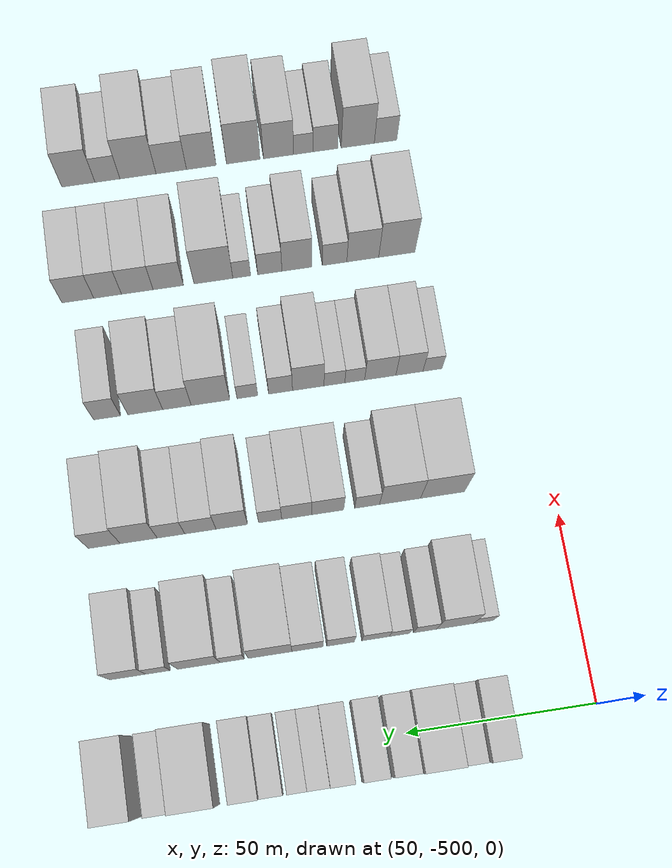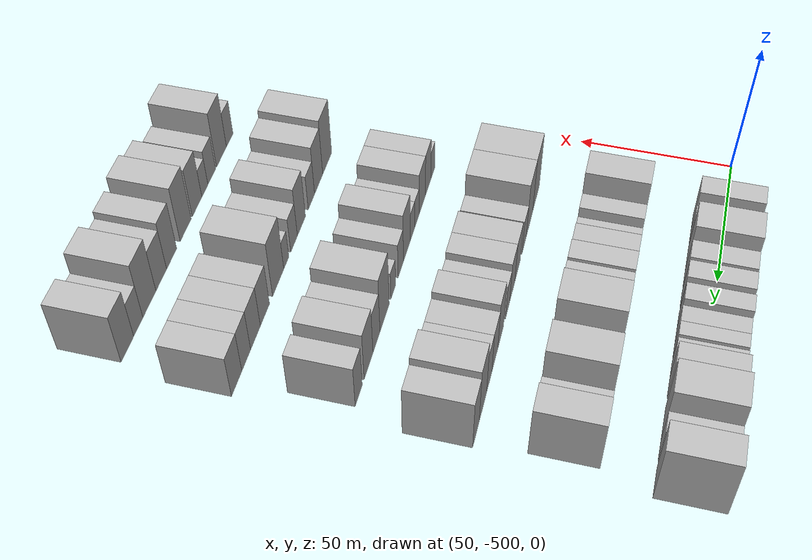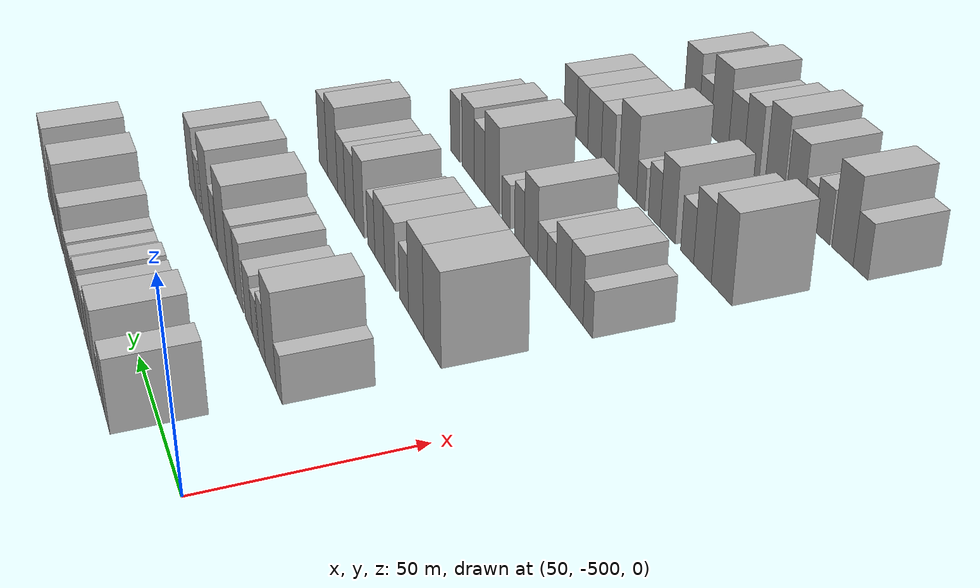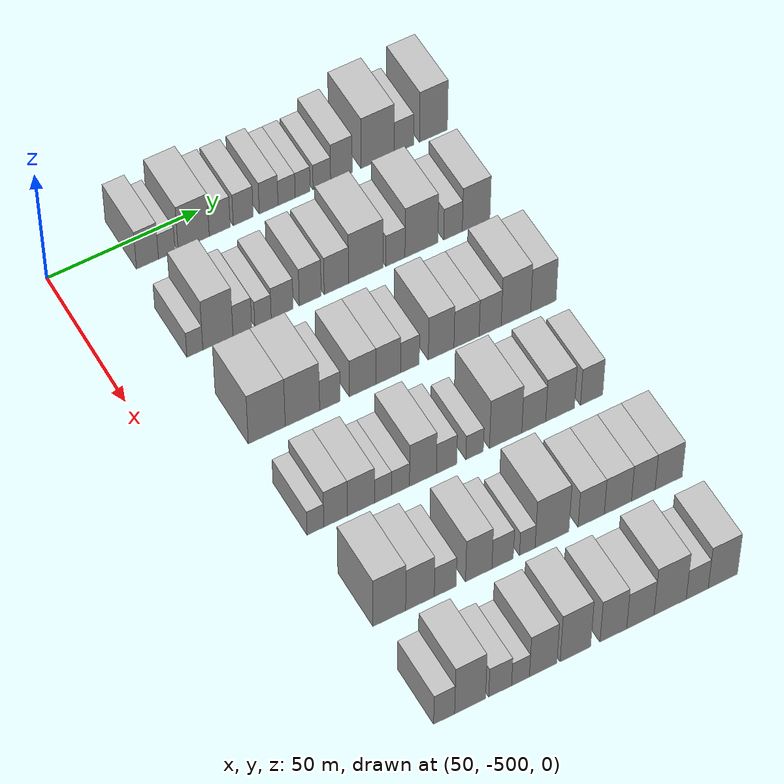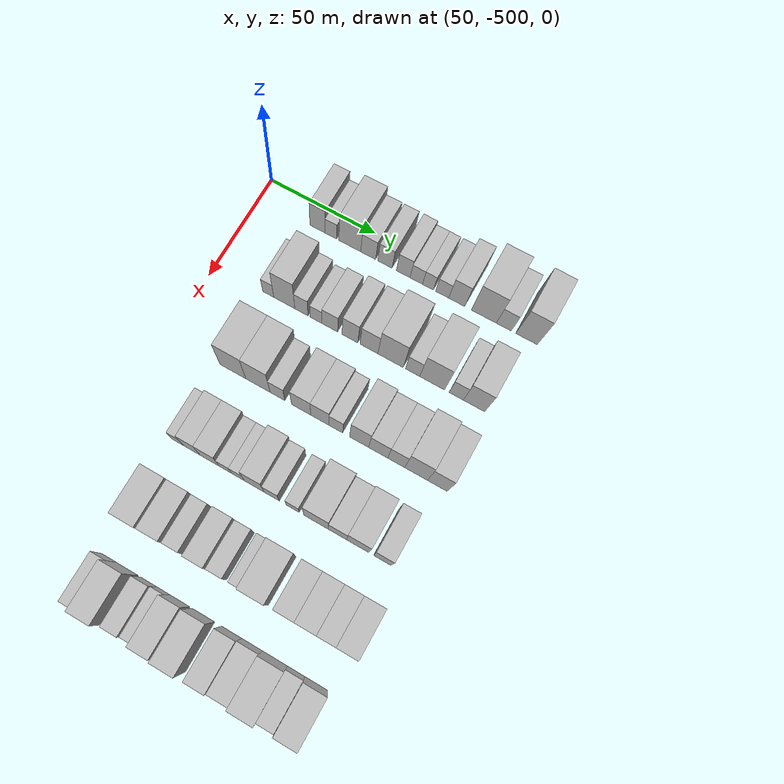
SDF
<sdf version="1.6">
 <world name="default">
  <model name="building_12">
   <static>1</static>
   <pose>50.0000 -471.9959 0 0.000000 0.000000 0.000000</pose>
   <link name="link">
    <pose>0 0 9.00 0 0 0</pose>
    <collision name="collision"><geometry><box><size>20.0000 7.2675 18.0000</size></box></geometry></collision>
    <visual name="visual">
     <cast_shadows>0</cast_shadows>
     <geometry><box><size>20.0000 7.2675 18.0000</size></box></geometry>
     <material>
      <script>
       <uri>model://HANNAS_wall/materials/scripts</uri>
       <uri>model://HANNAS_wall/materials/textures</uri>
       <name>vrc/HANNAS_wall</name>
      </script>
     </material>
    </visual>
   </link>
  </model>
  <model name="building_13">
   <static>1</static>
   <pose>50.0000 -465.6149 0 0.000000 0.000000 0.000000</pose>
   <link name="link">
    <pose>0 0 6.00 0 0 0</pose>
    <collision name="collision"><geometry><box><size>20.0000 5.4946 12.0000</size></box></geometry></collision>
    <visual name="visual">
     <cast_shadows>0</cast_shadows>
     <geometry><box><size>20.0000 5.4946 12.0000</size></box></geometry>
     <material>
      <script>
       <uri>model://HANNAS_wall/materials/scripts</uri>
       <uri>model://HANNAS_wall/materials/textures</uri>
       <name>vrc/HANNAS_wall</name>
      </script>
     </material>
    </visual>
   </link>
  </model>
  <model name="building_14">
   <static>1</static>
   <pose>50.0000 -456.6829 0 0.000000 0.000000 0.000000</pose>
   <link name="link">
    <pose>0 0 10.50 0 0 0</pose>
    <collision name="collision"><geometry><box><size>20.0000 10.3693 21.0000</size></box></geometry></collision>
    <visual name="visual">
     <cast_shadows>0</cast_shadows>
     <geometry><box><size>20.0000 10.3693 21.0000</size></box></geometry>
     <material>
      <script>
       <uri>model://HANNAS_wall/materials/scripts</uri>
       <uri>model://HANNAS_wall/materials/textures</uri>
       <name>vrc/HANNAS_wall</name>
      </script>
     </material>
    </visual>
   </link>
  </model>
  <model name="building_15">
   <static>1</static>
   <pose>50.0000 -447.9910 0 0.000000 0.000000 0.000000</pose>
   <link name="link">
    <pose>0 0 7.50 0 0 0</pose>
    <collision name="collision"><geometry><box><size>20.0000 7.0146 15.0000</size></box></geometry></collision>
    <visual name="visual">
     <cast_shadows>0</cast_shadows>
     <geometry><box><size>20.0000 7.0146 15.0000</size></box></geometry>
     <material>
      <script>
       <uri>model://HANNAS_wall/materials/scripts</uri>
       <uri>model://HANNAS_wall/materials/textures</uri>
       <name>vrc/HANNAS_wall</name>
      </script>
     </material>
    </visual>
   </link>
  </model>
  <model name="building_16">
   <static>1</static>
   <pose>50.0000 -440.1309 0 0.000000 0.000000 0.000000</pose>
   <link name="link">
    <pose>0 0 7.50 0 0 0</pose>
    <collision name="collision"><geometry><box><size>20.0000 6.7055 15.0000</size></box></geometry></collision>
    <visual name="visual">
     <cast_shadows>0</cast_shadows>
     <geometry><box><size>20.0000 6.7055 15.0000</size></box></geometry>
     <material>
      <script>
       <uri>model://HANNAS_wall/materials/scripts</uri>
       <uri>model://HANNAS_wall/materials/textures</uri>
       <name>vrc/HANNAS_wall</name>
      </script>
     </material>
    </visual>
   </link>
  </model>
  <model name="building_17">
   <static>1</static>
   <pose>50.0000 -431.6182 0 0.000000 0.000000 0.000000</pose>
   <link name="link">
    <pose>0 0 7.50 0 0 0</pose>
    <collision name="collision"><geometry><box><size>20.0000 6.3200 15.0000</size></box></geometry></collision>
    <visual name="visual">
     <cast_shadows>0</cast_shadows>
     <geometry><box><size>20.0000 6.3200 15.0000</size></box></geometry>
     <material>
      <script>
       <uri>model://HANNAS_wall/materials/scripts</uri>
       <uri>model://HANNAS_wall/materials/textures</uri>
       <name>vrc/HANNAS_wall</name>
      </script>
     </material>
    </visual>
   </link>
  </model>
  <model name="building_18">
   <static>1</static>
   <pose>50.0000 -425.5601 0 0.000000 0.000000 0.000000</pose>
   <link name="link">
    <pose>0 0 6.00 0 0 0</pose>
    <collision name="collision"><geometry><box><size>20.0000 5.7961 12.0000</size></box></geometry></collision>
    <visual name="visual">
     <cast_shadows>0</cast_shadows>
     <geometry><box><size>20.0000 5.7961 12.0000</size></box></geometry>
     <material>
      <script>
       <uri>model://HANNAS_wall/materials/scripts</uri>
       <uri>model://HANNAS_wall/materials/textures</uri>
       <name>vrc/HANNAS_wall</name>
      </script>
     </material>
    </visual>
   </link>
  </model>
  <model name="building_19">
   <static>1</static>
   <pose>50.0000 -420.1431 0 0.000000 0.000000 0.000000</pose>
   <link name="link">
    <pose>0 0 6.00 0 0 0</pose>
    <collision name="collision"><geometry><box><size>20.0000 5.0380 12.0000</size></box></geometry></collision>
    <visual name="visual">
     <cast_shadows>0</cast_shadows>
     <geometry><box><size>20.0000 5.0380 12.0000</size></box></geometry>
     <material>
      <script>
       <uri>model://HANNAS_wall/materials/scripts</uri>
       <uri>model://HANNAS_wall/materials/textures</uri>
       <name>vrc/HANNAS_wall</name>
      </script>
     </material>
    </visual>
   </link>
  </model>
  <model name="building_20">
   <static>1</static>
   <pose>50.0000 -413.6426 0 0.000000 0.000000 0.000000</pose>
   <link name="link">
    <pose>0 0 6.00 0 0 0</pose>
    <collision name="collision"><geometry><box><size>20.0000 5.9629 12.0000</size></box></geometry></collision>
    <visual name="visual">
     <cast_shadows>0</cast_shadows>
     <geometry><box><size>20.0000 5.9629 12.0000</size></box></geometry>
     <material>
      <script>
       <uri>model://HANNAS_wall/materials/scripts</uri>
       <uri>model://HANNAS_wall/materials/textures</uri>
       <name>vrc/HANNAS_wall</name>
      </script>
     </material>
    </visual>
   </link>
  </model>
  <model name="building_21">
   <static>1</static>
   <pose>50.0000 -406.9876 0 0.000000 0.000000 0.000000</pose>
   <link name="link">
    <pose>0 0 9.00 0 0 0</pose>
    <collision name="collision"><geometry><box><size>20.0000 7.3472 18.0000</size></box></geometry></collision>
    <visual name="visual">
     <cast_shadows>0</cast_shadows>
     <geometry><box><size>20.0000 7.3472 18.0000</size></box></geometry>
     <material>
      <script>
       <uri>model://HANNAS_wall/materials/scripts</uri>
       <uri>model://HANNAS_wall/materials/textures</uri>
       <name>vrc/HANNAS_wall</name>
      </script>
     </material>
    </visual>
   </link>
  </model>
  <model name="building_22">
   <static>1</static>
   <pose>50.0000 -394.6704 0 0.000000 0.000000 0.000000</pose>
   <link name="link">
    <pose>0 0 12.00 0 0 0</pose>
    <collision name="collision"><geometry><box><size>20.0000 11.2872 24.0000</size></box></geometry></collision>
    <visual name="visual">
     <cast_shadows>0</cast_shadows>
     <geometry><box><size>20.0000 11.2872 24.0000</size></box></geometry>
     <material>
      <script>
       <uri>model://HANNAS_wall/materials/scripts</uri>
       <uri>model://HANNAS_wall/materials/textures</uri>
       <name>vrc/HANNAS_wall</name>
      </script>
     </material>
    </visual>
   </link>
  </model>
  <model name="building_23">
   <static>1</static>
   <pose>50.0000 -385.6623 0 0.000000 0.000000 0.000000</pose>
   <link name="link">
    <pose>0 0 7.50 0 0 0</pose>
    <collision name="collision"><geometry><box><size>20.0000 6.7290 15.0000</size></box></geometry></collision>
    <visual name="visual">
     <cast_shadows>0</cast_shadows>
     <geometry><box><size>20.0000 6.7290 15.0000</size></box></geometry>
     <material>
      <script>
       <uri>model://HANNAS_wall/materials/scripts</uri>
       <uri>model://HANNAS_wall/materials/textures</uri>
       <name>vrc/HANNAS_wall</name>
      </script>
     </material>
    </visual>
   </link>
  </model>
  <model name="building_24">
   <static>1</static>
   <pose>50.0000 -375.4897 0 0.000000 0.000000 0.000000</pose>
   <link name="link">
    <pose>0 0 12.00 0 0 0</pose>
    <collision name="collision"><geometry><box><size>20.0000 9.6162 24.0000</size></box></geometry></collision>
    <visual name="visual">
     <cast_shadows>0</cast_shadows>
     <geometry><box><size>20.0000 9.6162 24.0000</size></box></geometry>
     <material>
      <script>
       <uri>model://HANNAS_wall/materials/scripts</uri>
       <uri>model://HANNAS_wall/materials/textures</uri>
       <name>vrc/HANNAS_wall</name>
      </script>
     </material>
    </visual>
   </link>
  </model>
  <model name="building_147">
   <static>1</static>
   <pose>85.0000 -474.8189 0 0.000000 0.000000 0.000000</pose>
   <link name="link">
    <pose>0 0 6.00 0 0 0</pose>
    <collision name="collision"><geometry><box><size>20.0000 5.2224 12.0000</size></box></geometry></collision>
    <visual name="visual">
     <cast_shadows>0</cast_shadows>
     <geometry><box><size>20.0000 5.2224 12.0000</size></box></geometry>
     <material>
      <script>
       <uri>model://HANNAS_wall/materials/scripts</uri>
       <uri>model://HANNAS_wall/materials/textures</uri>
       <name>vrc/HANNAS_wall</name>
      </script>
     </material>
    </visual>
   </link>
  </model>
  <model name="building_148">
   <static>1</static>
   <pose>85.0000 -467.2679 0 0.000000 0.000000 0.000000</pose>
   <link name="link">
    <pose>0 0 12.00 0 0 0</pose>
    <collision name="collision"><geometry><box><size>20.0000 9.8795 24.0000</size></box></geometry></collision>
    <visual name="visual">
     <cast_shadows>0</cast_shadows>
     <geometry><box><size>20.0000 9.8795 24.0000</size></box></geometry>
     <material>
      <script>
       <uri>model://HANNAS_wall/materials/scripts</uri>
       <uri>model://HANNAS_wall/materials/textures</uri>
       <name>vrc/HANNAS_wall</name>
      </script>
     </material>
    </visual>
   </link>
  </model>
  <model name="building_149">
   <static>1</static>
   <pose>85.0000 -459.2505 0 0.000000 0.000000 0.000000</pose>
   <link name="link">
    <pose>0 0 7.50 0 0 0</pose>
    <collision name="collision"><geometry><box><size>20.0000 6.1553 15.0000</size></box></geometry></collision>
    <visual name="visual">
     <cast_shadows>0</cast_shadows>
     <geometry><box><size>20.0000 6.1553 15.0000</size></box></geometry>
     <material>
      <script>
       <uri>model://HANNAS_wall/materials/scripts</uri>
       <uri>model://HANNAS_wall/materials/textures</uri>
       <name>vrc/HANNAS_wall</name>
      </script>
     </material>
    </visual>
   </link>
  </model>
  <model name="building_150">
   <static>1</static>
   <pose>85.0000 -452.4672 0 0.000000 0.000000 0.000000</pose>
   <link name="link">
    <pose>0 0 6.00 0 0 0</pose>
    <collision name="collision"><geometry><box><size>20.0000 5.4113 12.0000</size></box></geometry></collision>
    <visual name="visual">
     <cast_shadows>0</cast_shadows>
     <geometry><box><size>20.0000 5.4113 12.0000</size></box></geometry>
     <material>
      <script>
       <uri>model://HANNAS_wall/materials/scripts</uri>
       <uri>model://HANNAS_wall/materials/textures</uri>
       <name>vrc/HANNAS_wall</name>
      </script>
     </material>
    </visual>
   </link>
  </model>
  <model name="building_151">
   <static>1</static>
   <pose>85.0000 -446.1177 0 0.000000 0.000000 0.000000</pose>
   <link name="link">
    <pose>0 0 7.50 0 0 0</pose>
    <collision name="collision"><geometry><box><size>20.0000 7.2876 15.0000</size></box></geometry></collision>
    <visual name="visual">
     <cast_shadows>0</cast_shadows>
     <geometry><box><size>20.0000 7.2876 15.0000</size></box></geometry>
     <material>
      <script>
       <uri>model://HANNAS_wall/materials/scripts</uri>
       <uri>model://HANNAS_wall/materials/textures</uri>
       <name>vrc/HANNAS_wall</name>
      </script>
     </material>
    </visual>
   </link>
  </model>
  <model name="building_152">
   <static>1</static>
   <pose>85.0000 -436.8321 0 0.000000 0.000000 0.000000</pose>
   <link name="link">
    <pose>0 0 9.00 0 0 0</pose>
    <collision name="collision"><geometry><box><size>20.0000 7.2837 18.0000</size></box></geometry></collision>
    <visual name="visual">
     <cast_shadows>0</cast_shadows>
     <geometry><box><size>20.0000 7.2837 18.0000</size></box></geometry>
     <material>
      <script>
       <uri>model://HANNAS_wall/materials/scripts</uri>
       <uri>model://HANNAS_wall/materials/textures</uri>
       <name>vrc/HANNAS_wall</name>
      </script>
     </material>
    </visual>
   </link>
  </model>
  <model name="building_153">
   <static>1</static>
   <pose>85.0000 -428.1153 0 0.000000 0.000000 0.000000</pose>
   <link name="link">
    <pose>0 0 9.00 0 0 0</pose>
    <collision name="collision"><geometry><box><size>20.0000 8.1499 18.0000</size></box></geometry></collision>
    <visual name="visual">
     <cast_shadows>0</cast_shadows>
     <geometry><box><size>20.0000 8.1499 18.0000</size></box></geometry>
     <material>
      <script>
       <uri>model://HANNAS_wall/materials/scripts</uri>
       <uri>model://HANNAS_wall/materials/textures</uri>
       <name>vrc/HANNAS_wall</name>
      </script>
     </material>
    </visual>
   </link>
  </model>
  <model name="building_154">
   <static>1</static>
   <pose>85.0000 -418.2963 0 0.000000 0.000000 0.000000</pose>
   <link name="link">
    <pose>0 0 12.00 0 0 0</pose>
    <collision name="collision"><geometry><box><size>20.0000 11.4882 24.0000</size></box></geometry></collision>
    <visual name="visual">
     <cast_shadows>0</cast_shadows>
     <geometry><box><size>20.0000 11.4882 24.0000</size></box></geometry>
     <material>
      <script>
       <uri>model://HANNAS_wall/materials/scripts</uri>
       <uri>model://HANNAS_wall/materials/textures</uri>
       <name>vrc/HANNAS_wall</name>
      </script>
     </material>
    </visual>
   </link>
  </model>
  <model name="building_155">
   <static>1</static>
   <pose>85.0000 -408.3428 0 0.000000 0.000000 0.000000</pose>
   <link name="link">
    <pose>0 0 7.50 0 0 0</pose>
    <collision name="collision"><geometry><box><size>20.0000 6.4187 15.0000</size></box></geometry></collision>
    <visual name="visual">
     <cast_shadows>0</cast_shadows>
     <geometry><box><size>20.0000 6.4187 15.0000</size></box></geometry>
     <material>
      <script>
       <uri>model://HANNAS_wall/materials/scripts</uri>
       <uri>model://HANNAS_wall/materials/textures</uri>
       <name>vrc/HANNAS_wall</name>
      </script>
     </material>
    </visual>
   </link>
  </model>
  <model name="building_156">
   <static>1</static>
   <pose>85.0000 -399.5894 0 0.000000 0.000000 0.000000</pose>
   <link name="link">
    <pose>0 0 12.00 0 0 0</pose>
    <collision name="collision"><geometry><box><size>20.0000 11.0882 24.0000</size></box></geometry></collision>
    <visual name="visual">
     <cast_shadows>0</cast_shadows>
     <geometry><box><size>20.0000 11.0882 24.0000</size></box></geometry>
     <material>
      <script>
       <uri>model://HANNAS_wall/materials/scripts</uri>
       <uri>model://HANNAS_wall/materials/textures</uri>
       <name>vrc/HANNAS_wall</name>
      </script>
     </material>
    </visual>
   </link>
  </model>
  <model name="building_157">
   <static>1</static>
   <pose>85.0000 -388.8895 0 0.000000 0.000000 0.000000</pose>
   <link name="link">
    <pose>0 0 7.50 0 0 0</pose>
    <collision name="collision"><geometry><box><size>20.0000 6.3115 15.0000</size></box></geometry></collision>
    <visual name="visual">
     <cast_shadows>0</cast_shadows>
     <geometry><box><size>20.0000 6.3115 15.0000</size></box></geometry>
     <material>
      <script>
       <uri>model://HANNAS_wall/materials/scripts</uri>
       <uri>model://HANNAS_wall/materials/textures</uri>
       <name>vrc/HANNAS_wall</name>
      </script>
     </material>
    </visual>
   </link>
  </model>
  <model name="building_158">
   <static>1</static>
   <pose>85.0000 -381.0246 0 0.000000 0.000000 0.000000</pose>
   <link name="link">
    <pose>0 0 10.50 0 0 0</pose>
    <collision name="collision"><geometry><box><size>20.0000 9.4184 21.0000</size></box></geometry></collision>
    <visual name="visual">
     <cast_shadows>0</cast_shadows>
     <geometry><box><size>20.0000 9.4184 21.0000</size></box></geometry>
     <material>
      <script>
       <uri>model://HANNAS_wall/materials/scripts</uri>
       <uri>model://HANNAS_wall/materials/textures</uri>
       <name>vrc/HANNAS_wall</name>
      </script>
     </material>
    </visual>
   </link>
  </model>
  <model name="building_277">
   <static>1</static>
   <pose>120.0000 -470.1991 0 0.000000 0.000000 0.000000</pose>
   <link name="link">
    <pose>0 0 12.00 0 0 0</pose>
    <collision name="collision"><geometry><box><size>20.0000 11.9685 24.0000</size></box></geometry></collision>
    <visual name="visual">
     <cast_shadows>0</cast_shadows>
     <geometry><box><size>20.0000 11.9685 24.0000</size></box></geometry>
     <material>
      <script>
       <uri>model://HANNAS_wall/materials/scripts</uri>
       <uri>model://HANNAS_wall/materials/textures</uri>
       <name>vrc/HANNAS_wall</name>
      </script>
     </material>
    </visual>
   </link>
  </model>
  <model name="building_278">
   <static>1</static>
   <pose>120.0000 -458.6160 0 0.000000 0.000000 0.000000</pose>
   <link name="link">
    <pose>0 0 12.00 0 0 0</pose>
    <collision name="collision"><geometry><box><size>20.0000 11.1978 24.0000</size></box></geometry></collision>
    <visual name="visual">
     <cast_shadows>0</cast_shadows>
     <geometry><box><size>20.0000 11.1978 24.0000</size></box></geometry>
     <material>
      <script>
       <uri>model://HANNAS_wall/materials/scripts</uri>
       <uri>model://HANNAS_wall/materials/textures</uri>
       <name>vrc/HANNAS_wall</name>
      </script>
     </material>
    </visual>
   </link>
  </model>
  <model name="building_279">
   <static>1</static>
   <pose>120.0000 -449.6508 0 0.000000 0.000000 0.000000</pose>
   <link name="link">
    <pose>0 0 7.50 0 0 0</pose>
    <collision name="collision"><geometry><box><size>20.0000 6.7327 15.0000</size></box></geometry></collision>
    <visual name="visual">
     <cast_shadows>0</cast_shadows>
     <geometry><box><size>20.0000 6.7327 15.0000</size></box></geometry>
     <material>
      <script>
       <uri>model://HANNAS_wall/materials/scripts</uri>
       <uri>model://HANNAS_wall/materials/textures</uri>
       <name>vrc/HANNAS_wall</name>
      </script>
     </material>
    </visual>
   </link>
  </model>
  <model name="building_280">
   <static>1</static>
   <pose>120.0000 -438.9306 0 0.000000 0.000000 0.000000</pose>
   <link name="link">
    <pose>0 0 9.00 0 0 0</pose>
    <collision name="collision"><geometry><box><size>20.0000 8.7077 18.0000</size></box></geometry></collision>
    <visual name="visual">
     <cast_shadows>0</cast_shadows>
     <geometry><box><size>20.0000 8.7077 18.0000</size></box></geometry>
     <material>
      <script>
       <uri>model://HANNAS_wall/materials/scripts</uri>
       <uri>model://HANNAS_wall/materials/textures</uri>
       <name>vrc/HANNAS_wall</name>
      </script>
     </material>
    </visual>
   </link>
  </model>
  <model name="building_281">
   <static>1</static>
   <pose>120.0000 -430.5266 0 0.000000 0.000000 0.000000</pose>
   <link name="link">
    <pose>0 0 9.00 0 0 0</pose>
    <collision name="collision"><geometry><box><size>20.0000 8.1003 18.0000</size></box></geometry></collision>
    <visual name="visual">
     <cast_shadows>0</cast_shadows>
     <geometry><box><size>20.0000 8.1003 18.0000</size></box></geometry>
     <material>
      <script>
       <uri>model://HANNAS_wall/materials/scripts</uri>
       <uri>model://HANNAS_wall/materials/textures</uri>
       <name>vrc/HANNAS_wall</name>
      </script>
     </material>
    </visual>
   </link>
  </model>
  <model name="building_282">
   <static>1</static>
   <pose>120.0000 -423.3639 0 0.000000 0.000000 0.000000</pose>
   <link name="link">
    <pose>0 0 7.50 0 0 0</pose>
    <collision name="collision"><geometry><box><size>20.0000 6.2252 15.0000</size></box></geometry></collision>
    <visual name="visual">
     <cast_shadows>0</cast_shadows>
     <geometry><box><size>20.0000 6.2252 15.0000</size></box></geometry>
     <material>
      <script>
       <uri>model://HANNAS_wall/materials/scripts</uri>
       <uri>model://HANNAS_wall/materials/textures</uri>
       <name>vrc/HANNAS_wall</name>
      </script>
     </material>
    </visual>
   </link>
  </model>
  <model name="building_283">
   <static>1</static>
   <pose>120.0000 -412.9951 0 0.000000 0.000000 0.000000</pose>
   <link name="link">
    <pose>0 0 10.50 0 0 0</pose>
    <collision name="collision"><geometry><box><size>20.0000 8.5125 21.0000</size></box></geometry></collision>
    <visual name="visual">
     <cast_shadows>0</cast_shadows>
     <geometry><box><size>20.0000 8.5125 21.0000</size></box></geometry>
     <material>
      <script>
       <uri>model://HANNAS_wall/materials/scripts</uri>
       <uri>model://HANNAS_wall/materials/textures</uri>
       <name>vrc/HANNAS_wall</name>
      </script>
     </material>
    </visual>
   </link>
  </model>
  <model name="building_284">
   <static>1</static>
   <pose>120.0000 -404.5321 0 0.000000 0.000000 0.000000</pose>
   <link name="link">
    <pose>0 0 9.00 0 0 0</pose>
    <collision name="collision"><geometry><box><size>20.0000 8.4135 18.0000</size></box></geometry></collision>
    <visual name="visual">
     <cast_shadows>0</cast_shadows>
     <geometry><box><size>20.0000 8.4135 18.0000</size></box></geometry>
     <material>
      <script>
       <uri>model://HANNAS_wall/materials/scripts</uri>
       <uri>model://HANNAS_wall/materials/textures</uri>
       <name>vrc/HANNAS_wall</name>
      </script>
     </material>
    </visual>
   </link>
  </model>
  <model name="building_285">
   <static>1</static>
   <pose>120.0000 -396.6267 0 0.000000 0.000000 0.000000</pose>
   <link name="link">
    <pose>0 0 9.00 0 0 0</pose>
    <collision name="collision"><geometry><box><size>20.0000 7.3973 18.0000</size></box></geometry></collision>
    <visual name="visual">
     <cast_shadows>0</cast_shadows>
     <geometry><box><size>20.0000 7.3973 18.0000</size></box></geometry>
     <material>
      <script>
       <uri>model://HANNAS_wall/materials/scripts</uri>
       <uri>model://HANNAS_wall/materials/textures</uri>
       <name>vrc/HANNAS_wall</name>
      </script>
     </material>
    </visual>
   </link>
  </model>
  <model name="building_286">
   <static>1</static>
   <pose>120.0000 -387.9718 0 0.000000 0.000000 0.000000</pose>
   <link name="link">
    <pose>0 0 12.00 0 0 0</pose>
    <collision name="collision"><geometry><box><size>20.0000 9.9126 24.0000</size></box></geometry></collision>
    <visual name="visual">
     <cast_shadows>0</cast_shadows>
     <geometry><box><size>20.0000 9.9126 24.0000</size></box></geometry>
     <material>
      <script>
       <uri>model://HANNAS_wall/materials/scripts</uri>
       <uri>model://HANNAS_wall/materials/textures</uri>
       <name>vrc/HANNAS_wall</name>
      </script>
     </material>
    </visual>
   </link>
  </model>
  <model name="building_287">
   <static>1</static>
   <pose>120.0000 -378.7281 0 0.000000 0.000000 0.000000</pose>
   <link name="link">
    <pose>0 0 10.50 0 0 0</pose>
    <collision name="collision"><geometry><box><size>20.0000 8.5747 21.0000</size></box></geometry></collision>
    <visual name="visual">
     <cast_shadows>0</cast_shadows>
     <geometry><box><size>20.0000 8.5747 21.0000</size></box></geometry>
     <material>
      <script>
       <uri>model://HANNAS_wall/materials/scripts</uri>
       <uri>model://HANNAS_wall/materials/textures</uri>
       <name>vrc/HANNAS_wall</name>
      </script>
     </material>
    </visual>
   </link>
  </model>
  <model name="building_409">
   <static>1</static>
   <pose>155.0000 -473.6784 0 0.000000 0.000000 0.000000</pose>
   <link name="link">
    <pose>0 0 6.00 0 0 0</pose>
    <collision name="collision"><geometry><box><size>20.0000 5.3687 12.0000</size></box></geometry></collision>
    <visual name="visual">
     <cast_shadows>0</cast_shadows>
     <geometry><box><size>20.0000 5.3687 12.0000</size></box></geometry>
     <material>
      <script>
       <uri>model://HANNAS_wall/materials/scripts</uri>
       <uri>model://HANNAS_wall/materials/textures</uri>
       <name>vrc/HANNAS_wall</name>
      </script>
     </material>
    </visual>
   </link>
  </model>
  <model name="building_410">
   <static>1</static>
   <pose>155.0000 -467.2031 0 0.000000 0.000000 0.000000</pose>
   <link name="link">
    <pose>0 0 9.00 0 0 0</pose>
    <collision name="collision"><geometry><box><size>20.0000 7.5819 18.0000</size></box></geometry></collision>
    <visual name="visual">
     <cast_shadows>0</cast_shadows>
     <geometry><box><size>20.0000 7.5819 18.0000</size></box></geometry>
     <material>
      <script>
       <uri>model://HANNAS_wall/materials/scripts</uri>
       <uri>model://HANNAS_wall/materials/textures</uri>
       <name>vrc/HANNAS_wall</name>
      </script>
     </material>
    </visual>
   </link>
  </model>
  <model name="building_411">
   <static>1</static>
   <pose>155.0000 -459.0584 0 0.000000 0.000000 0.000000</pose>
   <link name="link">
    <pose>0 0 9.00 0 0 0</pose>
    <collision name="collision"><geometry><box><size>20.0000 8.7076 18.0000</size></box></geometry></collision>
    <visual name="visual">
     <cast_shadows>0</cast_shadows>
     <geometry><box><size>20.0000 8.7076 18.0000</size></box></geometry>
     <material>
      <script>
       <uri>model://HANNAS_wall/materials/scripts</uri>
       <uri>model://HANNAS_wall/materials/textures</uri>
       <name>vrc/HANNAS_wall</name>
      </script>
     </material>
    </visual>
   </link>
  </model>
  <model name="building_412">
   <static>1</static>
   <pose>155.0000 -451.9487 0 0.000000 0.000000 0.000000</pose>
   <link name="link">
    <pose>0 0 6.00 0 0 0</pose>
    <collision name="collision"><geometry><box><size>20.0000 5.5119 12.0000</size></box></geometry></collision>
    <visual name="visual">
     <cast_shadows>0</cast_shadows>
     <geometry><box><size>20.0000 5.5119 12.0000</size></box></geometry>
     <material>
      <script>
       <uri>model://HANNAS_wall/materials/scripts</uri>
       <uri>model://HANNAS_wall/materials/textures</uri>
       <name>vrc/HANNAS_wall</name>
      </script>
     </material>
    </visual>
   </link>
  </model>
  <model name="building_413">
   <static>1</static>
   <pose>155.0000 -446.2848 0 0.000000 0.000000 0.000000</pose>
   <link name="link">
    <pose>0 0 6.00 0 0 0</pose>
    <collision name="collision"><geometry><box><size>20.0000 5.8159 12.0000</size></box></geometry></collision>
    <visual name="visual">
     <cast_shadows>0</cast_shadows>
     <geometry><box><size>20.0000 5.8159 12.0000</size></box></geometry>
     <material>
      <script>
       <uri>model://HANNAS_wall/materials/scripts</uri>
       <uri>model://HANNAS_wall/materials/textures</uri>
       <name>vrc/HANNAS_wall</name>
      </script>
     </material>
    </visual>
   </link>
  </model>
  <model name="building_414">
   <static>1</static>
   <pose>155.0000 -439.0022 0 0.000000 0.000000 0.000000</pose>
   <link name="link">
    <pose>0 0 10.50 0 0 0</pose>
    <collision name="collision"><geometry><box><size>20.0000 8.7493 21.0000</size></box></geometry></collision>
    <visual name="visual">
     <cast_shadows>0</cast_shadows>
     <geometry><box><size>20.0000 8.7493 21.0000</size></box></geometry>
     <material>
      <script>
       <uri>model://HANNAS_wall/materials/scripts</uri>
       <uri>model://HANNAS_wall/materials/textures</uri>
       <name>vrc/HANNAS_wall</name>
      </script>
     </material>
    </visual>
   </link>
  </model>
  <model name="building_415">
   <static>1</static>
   <pose>155.0000 -431.3175 0 0.000000 0.000000 0.000000</pose>
   <link name="link">
    <pose>0 0 7.50 0 0 0</pose>
    <collision name="collision"><geometry><box><size>20.0000 6.6202 15.0000</size></box></geometry></collision>
    <visual name="visual">
     <cast_shadows>0</cast_shadows>
     <geometry><box><size>20.0000 6.6202 15.0000</size></box></geometry>
     <material>
      <script>
       <uri>model://HANNAS_wall/materials/scripts</uri>
       <uri>model://HANNAS_wall/materials/textures</uri>
       <name>vrc/HANNAS_wall</name>
      </script>
     </material>
    </visual>
   </link>
  </model>
  <model name="building_416">
   <static>1</static>
   <pose>155.0000 -422.1381 0 0.000000 0.000000 0.000000</pose>
   <link name="link">
    <pose>0 0 6.00 0 0 0</pose>
    <collision name="collision"><geometry><box><size>20.0000 5.7387 12.0000</size></box></geometry></collision>
    <visual name="visual">
     <cast_shadows>0</cast_shadows>
     <geometry><box><size>20.0000 5.7387 12.0000</size></box></geometry>
     <material>
      <script>
       <uri>model://HANNAS_wall/materials/scripts</uri>
       <uri>model://HANNAS_wall/materials/textures</uri>
       <name>vrc/HANNAS_wall</name>
      </script>
     </material>
    </visual>
   </link>
  </model>
  <model name="building_417">
   <static>1</static>
   <pose>155.0000 -411.9372 0 0.000000 0.000000 0.000000</pose>
   <link name="link">
    <pose>0 0 12.00 0 0 0</pose>
    <collision name="collision"><geometry><box><size>20.0000 10.6630 24.0000</size></box></geometry></collision>
    <visual name="visual">
     <cast_shadows>0</cast_shadows>
     <geometry><box><size>20.0000 10.6630 24.0000</size></box></geometry>
     <material>
      <script>
       <uri>model://HANNAS_wall/materials/scripts</uri>
       <uri>model://HANNAS_wall/materials/textures</uri>
       <name>vrc/HANNAS_wall</name>
      </script>
     </material>
    </visual>
   </link>
  </model>
  <model name="building_418">
   <static>1</static>
   <pose>155.0000 -402.6530 0 0.000000 0.000000 0.000000</pose>
   <link name="link">
    <pose>0 0 9.00 0 0 0</pose>
    <collision name="collision"><geometry><box><size>20.0000 7.9054 18.0000</size></box></geometry></collision>
    <visual name="visual">
     <cast_shadows>0</cast_shadows>
     <geometry><box><size>20.0000 7.9054 18.0000</size></box></geometry>
     <material>
      <script>
       <uri>model://HANNAS_wall/materials/scripts</uri>
       <uri>model://HANNAS_wall/materials/textures</uri>
       <name>vrc/HANNAS_wall</name>
      </script>
     </material>
    </visual>
   </link>
  </model>
  <model name="building_419">
   <static>1</static>
   <pose>155.0000 -393.9086 0 0.000000 0.000000 0.000000</pose>
   <link name="link">
    <pose>0 0 10.50 0 0 0</pose>
    <collision name="collision"><geometry><box><size>20.0000 9.5833 21.0000</size></box></geometry></collision>
    <visual name="visual">
     <cast_shadows>0</cast_shadows>
     <geometry><box><size>20.0000 9.5833 21.0000</size></box></geometry>
     <material>
      <script>
       <uri>model://HANNAS_wall/materials/scripts</uri>
       <uri>model://HANNAS_wall/materials/textures</uri>
       <name>vrc/HANNAS_wall</name>
      </script>
     </material>
    </visual>
   </link>
  </model>
  <model name="building_420">
   <static>1</static>
   <pose>155.0000 -383.4100 0 0.000000 0.000000 0.000000</pose>
   <link name="link">
    <pose>0 0 9.00 0 0 0</pose>
    <collision name="collision"><geometry><box><size>20.0000 7.4139 18.0000</size></box></geometry></collision>
    <visual name="visual">
     <cast_shadows>0</cast_shadows>
     <geometry><box><size>20.0000 7.4139 18.0000</size></box></geometry>
     <material>
      <script>
       <uri>model://HANNAS_wall/materials/scripts</uri>
       <uri>model://HANNAS_wall/materials/textures</uri>
       <name>vrc/HANNAS_wall</name>
      </script>
     </material>
    </visual>
   </link>
  </model>
  <model name="building_540">
   <static>1</static>
   <pose>190.0000 -469.6564 0 0.000000 0.000000 0.000000</pose>
   <link name="link">
    <pose>0 0 12.00 0 0 0</pose>
    <collision name="collision"><geometry><box><size>20.0000 10.3480 24.0000</size></box></geometry></collision>
    <visual name="visual">
     <cast_shadows>0</cast_shadows>
     <geometry><box><size>20.0000 10.3480 24.0000</size></box></geometry>
     <material>
      <script>
       <uri>model://HANNAS_wall/materials/scripts</uri>
       <uri>model://HANNAS_wall/materials/textures</uri>
       <name>vrc/HANNAS_wall</name>
      </script>
     </material>
    </visual>
   </link>
  </model>
  <model name="building_541">
   <static>1</static>
   <pose>190.0000 -459.9168 0 0.000000 0.000000 0.000000</pose>
   <link name="link">
    <pose>0 0 10.50 0 0 0</pose>
    <collision name="collision"><geometry><box><size>20.0000 9.1312 21.0000</size></box></geometry></collision>
    <visual name="visual">
     <cast_shadows>0</cast_shadows>
     <geometry><box><size>20.0000 9.1312 21.0000</size></box></geometry>
     <material>
      <script>
       <uri>model://HANNAS_wall/materials/scripts</uri>
       <uri>model://HANNAS_wall/materials/textures</uri>
       <name>vrc/HANNAS_wall</name>
      </script>
     </material>
    </visual>
   </link>
  </model>
  <model name="building_542">
   <static>1</static>
   <pose>190.0000 -451.8596 0 0.000000 0.000000 0.000000</pose>
   <link name="link">
    <pose>0 0 7.50 0 0 0</pose>
    <collision name="collision"><geometry><box><size>20.0000 6.9832 15.0000</size></box></geometry></collision>
    <visual name="visual">
     <cast_shadows>0</cast_shadows>
     <geometry><box><size>20.0000 6.9832 15.0000</size></box></geometry>
     <material>
      <script>
       <uri>model://HANNAS_wall/materials/scripts</uri>
       <uri>model://HANNAS_wall/materials/textures</uri>
       <name>vrc/HANNAS_wall</name>
      </script>
     </material>
    </visual>
   </link>
  </model>
  <model name="building_543">
   <static>1</static>
   <pose>190.0000 -441.1124 0 0.000000 0.000000 0.000000</pose>
   <link name="link">
    <pose>0 0 10.50 0 0 0</pose>
    <collision name="collision"><geometry><box><size>20.0000 8.5111 21.0000</size></box></geometry></collision>
    <visual name="visual">
     <cast_shadows>0</cast_shadows>
     <geometry><box><size>20.0000 8.5111 21.0000</size></box></geometry>
     <material>
      <script>
       <uri>model://HANNAS_wall/materials/scripts</uri>
       <uri>model://HANNAS_wall/materials/textures</uri>
       <name>vrc/HANNAS_wall</name>
      </script>
     </material>
    </visual>
   </link>
  </model>
  <model name="building_544">
   <static>1</static>
   <pose>190.0000 -433.4107 0 0.000000 0.000000 0.000000</pose>
   <link name="link">
    <pose>0 0 7.50 0 0 0</pose>
    <collision name="collision"><geometry><box><size>20.0000 6.8923 15.0000</size></box></geometry></collision>
    <visual name="visual">
     <cast_shadows>0</cast_shadows>
     <geometry><box><size>20.0000 6.8923 15.0000</size></box></geometry>
     <material>
      <script>
       <uri>model://HANNAS_wall/materials/scripts</uri>
       <uri>model://HANNAS_wall/materials/textures</uri>
       <name>vrc/HANNAS_wall</name>
      </script>
     </material>
    </visual>
   </link>
  </model>
  <model name="building_545">
   <static>1</static>
   <pose>190.0000 -425.4385 0 0.000000 0.000000 0.000000</pose>
   <link name="link">
    <pose>0 0 6.00 0 0 0</pose>
    <collision name="collision"><geometry><box><size>20.0000 5.0522 12.0000</size></box></geometry></collision>
    <visual name="visual">
     <cast_shadows>0</cast_shadows>
     <geometry><box><size>20.0000 5.0522 12.0000</size></box></geometry>
     <material>
      <script>
       <uri>model://HANNAS_wall/materials/scripts</uri>
       <uri>model://HANNAS_wall/materials/textures</uri>
       <name>vrc/HANNAS_wall</name>
      </script>
     </material>
    </visual>
   </link>
  </model>
  <model name="building_546">
   <static>1</static>
   <pose>190.0000 -417.4066 0 0.000000 0.000000 0.000000</pose>
   <link name="link">
    <pose>0 0 12.00 0 0 0</pose>
    <collision name="collision"><geometry><box><size>20.0000 11.0115 24.0000</size></box></geometry></collision>
    <visual name="visual">
     <cast_shadows>0</cast_shadows>
     <geometry><box><size>20.0000 11.0115 24.0000</size></box></geometry>
     <material>
      <script>
       <uri>model://HANNAS_wall/materials/scripts</uri>
       <uri>model://HANNAS_wall/materials/textures</uri>
       <name>vrc/HANNAS_wall</name>
      </script>
     </material>
    </visual>
   </link>
  </model>
  <model name="building_547">
   <static>1</static>
   <pose>190.0000 -404.6075 0 0.000000 0.000000 0.000000</pose>
   <link name="link">
    <pose>0 0 9.00 0 0 0</pose>
    <collision name="collision"><geometry><box><size>20.0000 8.5868 18.0000</size></box></geometry></collision>
    <visual name="visual">
     <cast_shadows>0</cast_shadows>
     <geometry><box><size>20.0000 8.5868 18.0000</size></box></geometry>
     <material>
      <script>
       <uri>model://HANNAS_wall/materials/scripts</uri>
       <uri>model://HANNAS_wall/materials/textures</uri>
       <name>vrc/HANNAS_wall</name>
      </script>
     </material>
    </visual>
   </link>
  </model>
  <model name="building_548">
   <static>1</static>
   <pose>190.0000 -395.8538 0 0.000000 0.000000 0.000000</pose>
   <link name="link">
    <pose>0 0 9.00 0 0 0</pose>
    <collision name="collision"><geometry><box><size>20.0000 8.9206 18.0000</size></box></geometry></collision>
    <visual name="visual">
     <cast_shadows>0</cast_shadows>
     <geometry><box><size>20.0000 8.9206 18.0000</size></box></geometry>
     <material>
      <script>
       <uri>model://HANNAS_wall/materials/scripts</uri>
       <uri>model://HANNAS_wall/materials/textures</uri>
       <name>vrc/HANNAS_wall</name>
      </script>
     </material>
    </visual>
   </link>
  </model>
  <model name="building_549">
   <static>1</static>
   <pose>190.0000 -387.4864 0 0.000000 0.000000 0.000000</pose>
   <link name="link">
    <pose>0 0 9.00 0 0 0</pose>
    <collision name="collision"><geometry><box><size>20.0000 7.8142 18.0000</size></box></geometry></collision>
    <visual name="visual">
     <cast_shadows>0</cast_shadows>
     <geometry><box><size>20.0000 7.8142 18.0000</size></box></geometry>
     <material>
      <script>
       <uri>model://HANNAS_wall/materials/scripts</uri>
       <uri>model://HANNAS_wall/materials/textures</uri>
       <name>vrc/HANNAS_wall</name>
      </script>
     </material>
    </visual>
   </link>
  </model>
  <model name="building_550">
   <static>1</static>
   <pose>190.0000 -379.0936 0 0.000000 0.000000 0.000000</pose>
   <link name="link">
    <pose>0 0 9.00 0 0 0</pose>
    <collision name="collision"><geometry><box><size>20.0000 8.9714 18.0000</size></box></geometry></collision>
    <visual name="visual">
     <cast_shadows>0</cast_shadows>
     <geometry><box><size>20.0000 8.9714 18.0000</size></box></geometry>
     <material>
      <script>
       <uri>model://HANNAS_wall/materials/scripts</uri>
       <uri>model://HANNAS_wall/materials/textures</uri>
       <name>vrc/HANNAS_wall</name>
      </script>
     </material>
    </visual>
   </link>
  </model>
  <model name="building_665">
   <static>1</static>
   <pose>225.0000 -472.3109 0 0.000000 0.000000 0.000000</pose>
   <link name="link">
    <pose>0 0 7.50 0 0 0</pose>
    <collision name="collision"><geometry><box><size>20.0000 6.5751 15.0000</size></box></geometry></collision>
    <visual name="visual">
     <cast_shadows>0</cast_shadows>
     <geometry><box><size>20.0000 6.5751 15.0000</size></box></geometry>
     <material>
      <script>
       <uri>model://HANNAS_wall/materials/scripts</uri>
       <uri>model://HANNAS_wall/materials/textures</uri>
       <name>vrc/HANNAS_wall</name>
      </script>
     </material>
    </visual>
   </link>
  </model>
  <model name="building_666">
   <static>1</static>
   <pose>225.0000 -464.1613 0 0.000000 0.000000 0.000000</pose>
   <link name="link">
    <pose>0 0 12.00 0 0 0</pose>
    <collision name="collision"><geometry><box><size>20.0000 9.7242 24.0000</size></box></geometry></collision>
    <visual name="visual">
     <cast_shadows>0</cast_shadows>
     <geometry><box><size>20.0000 9.7242 24.0000</size></box></geometry>
     <material>
      <script>
       <uri>model://HANNAS_wall/materials/scripts</uri>
       <uri>model://HANNAS_wall/materials/textures</uri>
       <name>vrc/HANNAS_wall</name>
      </script>
     </material>
    </visual>
   </link>
  </model>
  <model name="building_667">
   <static>1</static>
   <pose>225.0000 -454.6818 0 0.000000 0.000000 0.000000</pose>
   <link name="link">
    <pose>0 0 7.50 0 0 0</pose>
    <collision name="collision"><geometry><box><size>20.0000 7.2347 15.0000</size></box></geometry></collision>
    <visual name="visual">
     <cast_shadows>0</cast_shadows>
     <geometry><box><size>20.0000 7.2347 15.0000</size></box></geometry>
     <material>
      <script>
       <uri>model://HANNAS_wall/materials/scripts</uri>
       <uri>model://HANNAS_wall/materials/textures</uri>
       <name>vrc/HANNAS_wall</name>
      </script>
     </material>
    </visual>
   </link>
  </model>
  <model name="building_668">
   <static>1</static>
   <pose>225.0000 -448.2374 0 0.000000 0.000000 0.000000</pose>
   <link name="link">
    <pose>0 0 6.00 0 0 0</pose>
    <collision name="collision"><geometry><box><size>20.0000 5.6543 12.0000</size></box></geometry></collision>
    <visual name="visual">
     <cast_shadows>0</cast_shadows>
     <geometry><box><size>20.0000 5.6543 12.0000</size></box></geometry>
     <material>
      <script>
       <uri>model://HANNAS_wall/materials/scripts</uri>
       <uri>model://HANNAS_wall/materials/textures</uri>
       <name>vrc/HANNAS_wall</name>
      </script>
     </material>
    </visual>
   </link>
  </model>
  <model name="building_669">
   <static>1</static>
   <pose>225.0000 -441.0136 0 0.000000 0.000000 0.000000</pose>
   <link name="link">
    <pose>0 0 10.50 0 0 0</pose>
    <collision name="collision"><geometry><box><size>20.0000 8.7932 21.0000</size></box></geometry></collision>
    <visual name="visual">
     <cast_shadows>0</cast_shadows>
     <geometry><box><size>20.0000 8.7932 21.0000</size></box></geometry>
     <material>
      <script>
       <uri>model://HANNAS_wall/materials/scripts</uri>
       <uri>model://HANNAS_wall/materials/textures</uri>
       <name>vrc/HANNAS_wall</name>
      </script>
     </material>
    </visual>
   </link>
  </model>
  <model name="building_670">
   <static>1</static>
   <pose>225.0000 -430.7352 0 0.000000 0.000000 0.000000</pose>
   <link name="link">
    <pose>0 0 12.00 0 0 0</pose>
    <collision name="collision"><geometry><box><size>20.0000 9.7637 24.0000</size></box></geometry></collision>
    <visual name="visual">
     <cast_shadows>0</cast_shadows>
     <geometry><box><size>20.0000 9.7637 24.0000</size></box></geometry>
     <material>
      <script>
       <uri>model://HANNAS_wall/materials/scripts</uri>
       <uri>model://HANNAS_wall/materials/textures</uri>
       <name>vrc/HANNAS_wall</name>
      </script>
     </material>
    </visual>
   </link>
  </model>
  <model name="building_671">
   <static>1</static>
   <pose>225.0000 -418.5524 0 0.000000 0.000000 0.000000</pose>
   <link name="link">
    <pose>0 0 10.50 0 0 0</pose>
    <collision name="collision"><geometry><box><size>20.0000 8.6019 21.0000</size></box></geometry></collision>
    <visual name="visual">
     <cast_shadows>0</cast_shadows>
     <geometry><box><size>20.0000 8.6019 21.0000</size></box></geometry>
     <material>
      <script>
       <uri>model://HANNAS_wall/materials/scripts</uri>
       <uri>model://HANNAS_wall/materials/textures</uri>
       <name>vrc/HANNAS_wall</name>
      </script>
     </material>
    </visual>
   </link>
  </model>
  <model name="building_672">
   <static>1</static>
   <pose>225.0000 -409.8300 0 0.000000 0.000000 0.000000</pose>
   <link name="link">
    <pose>0 0 9.00 0 0 0</pose>
    <collision name="collision"><geometry><box><size>20.0000 8.8430 18.0000</size></box></geometry></collision>
    <visual name="visual">
     <cast_shadows>0</cast_shadows>
     <geometry><box><size>20.0000 8.8430 18.0000</size></box></geometry>
     <material>
      <script>
       <uri>model://HANNAS_wall/materials/scripts</uri>
       <uri>model://HANNAS_wall/materials/textures</uri>
       <name>vrc/HANNAS_wall</name>
      </script>
     </material>
    </visual>
   </link>
  </model>
  <model name="building_673">
   <static>1</static>
   <pose>225.0000 -400.1808 0 0.000000 0.000000 0.000000</pose>
   <link name="link">
    <pose>0 0 12.00 0 0 0</pose>
    <collision name="collision"><geometry><box><size>20.0000 10.4555 24.0000</size></box></geometry></collision>
    <visual name="visual">
     <cast_shadows>0</cast_shadows>
     <geometry><box><size>20.0000 10.4555 24.0000</size></box></geometry>
     <material>
      <script>
       <uri>model://HANNAS_wall/materials/scripts</uri>
       <uri>model://HANNAS_wall/materials/textures</uri>
       <name>vrc/HANNAS_wall</name>
      </script>
     </material>
    </visual>
   </link>
  </model>
  <model name="building_674">
   <static>1</static>
   <pose>225.0000 -391.3608 0 0.000000 0.000000 0.000000</pose>
   <link name="link">
    <pose>0 0 7.50 0 0 0</pose>
    <collision name="collision"><geometry><box><size>20.0000 7.1846 15.0000</size></box></geometry></collision>
    <visual name="visual">
     <cast_shadows>0</cast_shadows>
     <geometry><box><size>20.0000 7.1846 15.0000</size></box></geometry>
     <material>
      <script>
       <uri>model://HANNAS_wall/materials/scripts</uri>
       <uri>model://HANNAS_wall/materials/textures</uri>
       <name>vrc/HANNAS_wall</name>
      </script>
     </material>
    </visual>
   </link>
  </model>
  <model name="building_675">
   <static>1</static>
   <pose>225.0000 -382.9918 0 0.000000 0.000000 0.000000</pose>
   <link name="link">
    <pose>0 0 10.50 0 0 0</pose>
    <collision name="collision"><geometry><box><size>20.0000 9.5534 21.0000</size></box></geometry></collision>
    <visual name="visual">
     <cast_shadows>0</cast_shadows>
     <geometry><box><size>20.0000 9.5534 21.0000</size></box></geometry>
     <material>
      <script>
       <uri>model://HANNAS_wall/materials/scripts</uri>
       <uri>model://HANNAS_wall/materials/textures</uri>
       <name>vrc/HANNAS_wall</name>
      </script>
     </material>
    </visual>
   </link>
  </model>
 </world>
</sdf>
